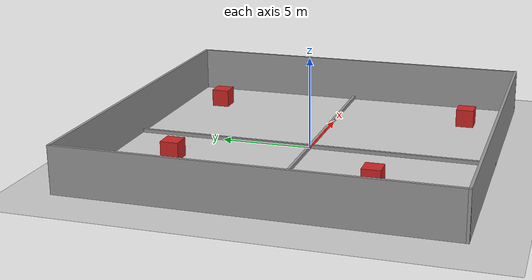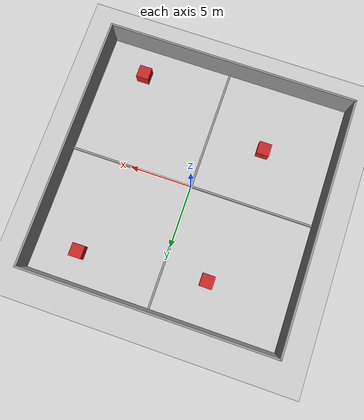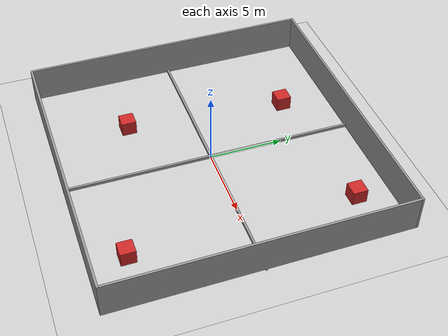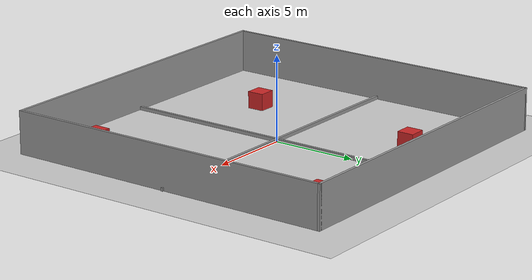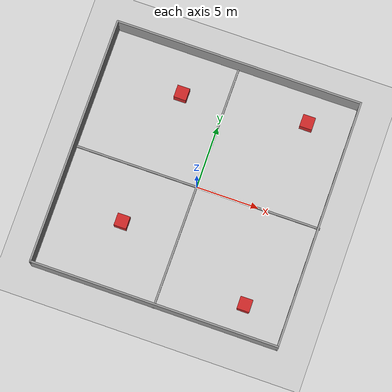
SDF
<sdf version="1.7">
 <world name="default">
  <light name="sun" type="directional">
   <pose>0 0 10 0 -0 0</pose>
   <diffuse>0.8 0.8 0.8 1</diffuse>
   <specular>0.2 0.2 0.2 1</specular>
   <attenuation>
    <range>1000</range>
    <constant>0.9</constant>
    <linear>0.01</linear>
    <quadratic>0.001</quadratic>
   </attenuation>
   <direction>-0.5 0.1 -0.9</direction>
   <spot><inner_angle>0</inner_angle><outer_angle>0</outer_angle><falloff>0</falloff></spot>
  </light>
  <model name="ground_plane">
   <static>1</static>
   <link name="link">
    <collision name="collision">
     <geometry><plane><normal>0 0 1</normal><size>100 100</size></plane></geometry>
     <surface><friction><ode><mu>100</mu><mu2>50</mu2></ode></friction></surface>
    </collision>
    <visual name="visual">
     <cast_shadows>0</cast_shadows>
     <geometry><plane><normal>0 0 1</normal><size>100 100</size></plane></geometry>
     <material>
      <script><uri>file://media/materials/scripts/gazebo.material</uri><name>Gazebo/Grey</name></script>
     </material>
    </visual>
   </link>
  </model>
  <gravity>0 0 -9.8</gravity>
  <magnetic_field>6e-06 2.3e-05 -4.2e-05</magnetic_field>
  <atmosphere type="adiabatic"/>
  <physics type="ode">
   <max_step_size>0.001</max_step_size>
   <real_time_factor>1</real_time_factor>
   <real_time_update_rate>1000</real_time_update_rate>
  </physics>
  <scene><ambient>0.4 0.4 0.4 1</ambient><background>0.7 0.7 0.7 1</background><shadows>1</shadows></scene>
  <spherical_coordinates>
   <surface_model>EARTH_WGS84</surface_model>
   <latitude_deg>0</latitude_deg>
   <longitude_deg>0</longitude_deg>
   <elevation>0</elevation>
   <heading_deg>0</heading_deg>
  </spherical_coordinates>
  <model name="boundary_20by20">
   <pose>-0.00697 0.010437 0 0 -0 0</pose>
   <link name="Wall_11">
    <collision name="Wall_11_Collision">
     <geometry><box><size>20 0.15 2.5</size></box></geometry>
     <pose>0 0 1.25 0 -0 0</pose>
    </collision>
    <visual name="Wall_11_Visual">
     <pose>0 0 1.25 0 -0 0</pose>
     <geometry><box><size>20 0.15 2.5</size></box></geometry>
     <material>
      <script><uri>file://media/materials/scripts/gazebo.material</uri><name>Gazebo/Grey</name></script>
      <ambient>0 0 0 1</ambient>
     </material>
     <meta><layer>0</layer></meta>
    </visual>
    <pose>-9.925 0 0 0 -0 1.5708</pose>
   </link>
   <link name="Wall_13">
    <collision name="Wall_13_Collision">
     <geometry><box><size>20 0.15 2.5</size></box></geometry>
     <pose>0 0 1.25 0 -0 0</pose>
    </collision>
    <visual name="Wall_13_Visual">
     <pose>0 0 1.25 0 -0 0</pose>
     <geometry><box><size>20 0.15 2.5</size></box></geometry>
     <material>
      <script><uri>file://media/materials/scripts/gazebo.material</uri><name>Gazebo/Grey</name></script>
      <ambient>0 0 0 1</ambient>
     </material>
     <meta><layer>0</layer></meta>
    </visual>
    <pose>-0 9.925 0 0 -0 0</pose>
   </link>
   <link name="Wall_5">
    <collision name="Wall_5_Collision">
     <geometry><box><size>20 0.15 2.5</size></box></geometry>
     <pose>0 0 1.25 0 -0 0</pose>
    </collision>
    <visual name="Wall_5_Visual">
     <pose>0 0 1.25 0 -0 0</pose>
     <geometry><box><size>20 0.15 2.5</size></box></geometry>
     <material>
      <script><uri>file://media/materials/scripts/gazebo.material</uri><name>Gazebo/Grey</name></script>
      <ambient>0 0 0 1</ambient>
     </material>
     <meta><layer>0</layer></meta>
    </visual>
    <pose>-0 -9.925 0 0 -0 0</pose>
   </link>
   <link name="Wall_9">
    <collision name="Wall_9_Collision">
     <geometry><box><size>20 0.15 2.5</size></box></geometry>
     <pose>0 0 1.25 0 -0 0</pose>
    </collision>
    <visual name="Wall_9_Visual">
     <pose>0 0 1.25 0 -0 0</pose>
     <geometry><box><size>20 0.15 2.5</size></box></geometry>
     <material>
      <script><uri>file://media/materials/scripts/gazebo.material</uri><name>Gazebo/Grey</name></script>
      <ambient>1 1 1 1</ambient>
     </material>
     <meta><layer>0</layer></meta>
    </visual>
    <pose>9.925 0 0 0 -0 1.5708</pose>
   </link>
   <static>1</static>
  </model>
  <model name="line">
   <pose>0.071694 1.47992 0 0 -0 0</pose>
   <link name="Wall_17">
    <collision name="Wall_17_Collision">
     <geometry><box><size>20 0.15 0.2</size></box></geometry>
     <pose>0 0 0.1 0 -0 0</pose>
    </collision>
    <visual name="Wall_17_Visual">
     <pose>0 0 0.1 0 -0 0</pose>
     <geometry><box><size>20 0.15 0.2</size></box></geometry>
     <material>
      <script><uri>file://media/materials/scripts/gazebo.material</uri><name>Gazebo/Grey</name></script>
      <ambient>1 1 1 1</ambient>
     </material>
     <meta><layer>0</layer></meta>
    </visual>
    <pose>0 -1.4895 0 0 -0 0</pose>
   </link>
   <static>1</static>
  </model>
  <model name="line_clone">
   <pose>-1.50212 0.008337 0 0 -0 1.56563</pose>
   <link name="Wall_17">
    <collision name="Wall_17_Collision">
     <geometry><box><size>20 0.15 0.2</size></box></geometry>
     <pose>0 0 0.1 0 -0 0</pose>
    </collision>
    <visual name="Wall_17_Visual">
     <pose>0 0 0.1 0 -0 0</pose>
     <geometry><box><size>20 0.15 0.2</size></box></geometry>
     <material>
      <script><uri>file://media/materials/scripts/gazebo.material</uri><name>Gazebo/Grey</name></script>
      <ambient>1 1 1 1</ambient>
     </material>
     <meta><layer>0</layer></meta>
    </visual>
    <pose>0 -1.4895 0 0 -0 0</pose>
   </link>
   <static>1</static>
  </model>
  <model name="redblock_1by1">
   <link name="link_1">
    <inertial>
     <mass>1</mass>
     <inertia>
      <ixx>0.166667</ixx>
      <ixy>0</ixy>
      <ixz>0</ixz>
      <iyy>0.166667</iyy>
      <iyz>0</iyz>
      <izz>0.166667</izz>
     </inertia>
    </inertial>
    <visual name="visual">
     <geometry><box><size>1 1 1</size></box></geometry>
     <material>
      <lighting>1</lighting>
      <script><uri>file://media/materials/scripts/gazebo.material</uri><name>Gazebo/Red</name></script>
      <shader type="pixel"><normal_map>__default__</normal_map></shader>
      <ambient>1 0 0 1</ambient>
      <diffuse>1 0 0 1</diffuse>
      <specular>1 0 0 1</specular>
      <emissive>1 0 0 1</emissive>
     </material>
    </visual>
    <collision name="collision">
     <geometry><box><size>1 1 1</size></box></geometry>
     <surface>
      <friction>
       <ode><mu>1</mu><mu2>1</mu2><fdir1>0 0 0</fdir1><slip1>0</slip1><slip2>0</slip2></ode>
       <torsional>
        <coefficient>1</coefficient>
        <patch_radius>0</patch_radius>
        <surface_radius>0</surface_radius>
        <use_patch_radius>1</use_patch_radius>
        <ode><slip>0</slip></ode>
       </torsional>
      </friction>
      <bounce><restitution_coefficient>0</restitution_coefficient><threshold>1e+06</threshold></bounce>
      <contact>
       <collide_without_contact>0</collide_without_contact>
       <collide_without_contact_bitmask>1</collide_without_contact_bitmask>
       <collide_bitmask>1</collide_bitmask>
       <ode>
        <soft_cfm>0</soft_cfm>
        <soft_erp>0.2</soft_erp>
        <kp>1e+13</kp>
        <kd>1</kd>
        <max_vel>0.01</max_vel>
        <min_depth>0</min_depth>
       </ode>
       <bullet>
        <split_impulse>1</split_impulse>
        <split_impulse_penetration_threshold>-0.01</split_impulse_penetration_threshold>
        <soft_cfm>0</soft_cfm>
        <soft_erp>0.2</soft_erp>
        <kp>1e+13</kp>
        <kd>1</kd>
       </bullet>
      </contact>
     </surface>
    </collision>
   </link>
   <static>0</static>
   <pose>-3.48861 6.50828 0.499995 -1e-05 -0 -0</pose>
  </model>
  <model name="redblock_1by1_clone">
   <link name="link_1">
    <inertial>
     <mass>1</mass>
     <inertia>
      <ixx>0.166667</ixx>
      <ixy>0</ixy>
      <ixz>0</ixz>
      <iyy>0.166667</iyy>
      <iyz>0</iyz>
      <izz>0.166667</izz>
     </inertia>
    </inertial>
    <visual name="visual">
     <geometry><box><size>1 1 1</size></box></geometry>
     <material>
      <lighting>1</lighting>
      <script><uri>file://media/materials/scripts/gazebo.material</uri><name>Gazebo/Red</name></script>
      <shader type="pixel"><normal_map>__default__</normal_map></shader>
      <ambient>1 0 0 1</ambient>
      <diffuse>1 0 0 1</diffuse>
      <specular>1 0 0 1</specular>
      <emissive>1 0 0 1</emissive>
     </material>
    </visual>
    <collision name="collision">
     <geometry><box><size>1 1 1</size></box></geometry>
     <surface>
      <friction>
       <ode><mu>1</mu><mu2>1</mu2><fdir1>0 0 0</fdir1><slip1>0</slip1><slip2>0</slip2></ode>
       <torsional>
        <coefficient>1</coefficient>
        <patch_radius>0</patch_radius>
        <surface_radius>0</surface_radius>
        <use_patch_radius>1</use_patch_radius>
        <ode><slip>0</slip></ode>
       </torsional>
      </friction>
      <bounce><restitution_coefficient>0</restitution_coefficient><threshold>1e+06</threshold></bounce>
      <contact>
       <collide_without_contact>0</collide_without_contact>
       <collide_without_contact_bitmask>1</collide_without_contact_bitmask>
       <collide_bitmask>1</collide_bitmask>
       <ode>
        <soft_cfm>0</soft_cfm>
        <soft_erp>0.2</soft_erp>
        <kp>1e+13</kp>
        <kd>1</kd>
        <max_vel>0.01</max_vel>
        <min_depth>0</min_depth>
       </ode>
       <bullet>
        <split_impulse>1</split_impulse>
        <split_impulse_penetration_threshold>-0.01</split_impulse_penetration_threshold>
        <soft_cfm>0</soft_cfm>
        <soft_erp>0.2</soft_erp>
        <kp>1e+13</kp>
        <kd>1</kd>
       </bullet>
      </contact>
     </surface>
    </collision>
   </link>
   <static>0</static>
   <pose>-4.51136 -4.52133 0.499995 -1e-05 -0 -0</pose>
  </model>
  <model name="redblock_1by1_clone_0">
   <link name="link_1">
    <inertial>
     <mass>1</mass>
     <inertia>
      <ixx>0.166667</ixx>
      <ixy>0</ixy>
      <ixz>0</ixz>
      <iyy>0.166667</iyy>
      <iyz>0</iyz>
      <izz>0.166667</izz>
     </inertia>
    </inertial>
    <visual name="visual">
     <geometry><box><size>1 1 1</size></box></geometry>
     <material>
      <lighting>1</lighting>
      <script><uri>file://media/materials/scripts/gazebo.material</uri><name>Gazebo/Red</name></script>
      <shader type="pixel"><normal_map>__default__</normal_map></shader>
      <ambient>1 0 0 1</ambient>
      <diffuse>1 0 0 1</diffuse>
      <specular>1 0 0 1</specular>
      <emissive>1 0 0 1</emissive>
     </material>
    </visual>
    <collision name="collision">
     <geometry><box><size>1 1 1</size></box></geometry>
     <surface>
      <friction>
       <ode><mu>1</mu><mu2>1</mu2><fdir1>0 0 0</fdir1><slip1>0</slip1><slip2>0</slip2></ode>
       <torsional>
        <coefficient>1</coefficient>
        <patch_radius>0</patch_radius>
        <surface_radius>0</surface_radius>
        <use_patch_radius>1</use_patch_radius>
        <ode><slip>0</slip></ode>
       </torsional>
      </friction>
      <bounce><restitution_coefficient>0</restitution_coefficient><threshold>1e+06</threshold></bounce>
      <contact>
       <collide_without_contact>0</collide_without_contact>
       <collide_without_contact_bitmask>1</collide_without_contact_bitmask>
       <collide_bitmask>1</collide_bitmask>
       <ode>
        <soft_cfm>0</soft_cfm>
        <soft_erp>0.2</soft_erp>
        <kp>1e+13</kp>
        <kd>1</kd>
        <max_vel>0.01</max_vel>
        <min_depth>0</min_depth>
       </ode>
       <bullet>
        <split_impulse>1</split_impulse>
        <split_impulse_penetration_threshold>-0.01</split_impulse_penetration_threshold>
        <soft_cfm>0</soft_cfm>
        <soft_erp>0.2</soft_erp>
        <kp>1e+13</kp>
        <kd>1</kd>
       </bullet>
      </contact>
     </surface>
    </collision>
   </link>
   <static>0</static>
   <pose>6.49646 7.51516 0.499995 -1e-05 -0 -0</pose>
  </model>
  <model name="redblock_1by1_clone_1">
   <link name="link_1">
    <inertial>
     <mass>1</mass>
     <inertia>
      <ixx>0.166667</ixx>
      <ixy>0</ixy>
      <ixz>0</ixz>
      <iyy>0.166667</iyy>
      <iyz>0</iyz>
      <izz>0.166667</izz>
     </inertia>
    </inertial>
    <visual name="visual">
     <geometry><box><size>1 1 1</size></box></geometry>
     <material>
      <lighting>1</lighting>
      <script><uri>file://media/materials/scripts/gazebo.material</uri><name>Gazebo/Red</name></script>
      <shader type="pixel"><normal_map>__default__</normal_map></shader>
      <ambient>1 0 0 1</ambient>
      <diffuse>1 0 0 1</diffuse>
      <specular>1 0 0 1</specular>
      <emissive>1 0 0 1</emissive>
     </material>
    </visual>
    <collision name="collision">
     <geometry><box><size>1 1 1</size></box></geometry>
     <surface>
      <friction>
       <ode><mu>1</mu><mu2>1</mu2><fdir1>0 0 0</fdir1><slip1>0</slip1><slip2>0</slip2></ode>
       <torsional>
        <coefficient>1</coefficient>
        <patch_radius>0</patch_radius>
        <surface_radius>0</surface_radius>
        <use_patch_radius>1</use_patch_radius>
        <ode><slip>0</slip></ode>
       </torsional>
      </friction>
      <bounce><restitution_coefficient>0</restitution_coefficient><threshold>1e+06</threshold></bounce>
      <contact>
       <collide_without_contact>0</collide_without_contact>
       <collide_without_contact_bitmask>1</collide_without_contact_bitmask>
       <collide_bitmask>1</collide_bitmask>
       <ode>
        <soft_cfm>0</soft_cfm>
        <soft_erp>0.2</soft_erp>
        <kp>1e+13</kp>
        <kd>1</kd>
        <max_vel>0.01</max_vel>
        <min_depth>0</min_depth>
       </ode>
       <bullet>
        <split_impulse>1</split_impulse>
        <split_impulse_penetration_threshold>-0.01</split_impulse_penetration_threshold>
        <soft_cfm>0</soft_cfm>
        <soft_erp>0.2</soft_erp>
        <kp>1e+13</kp>
        <kd>1</kd>
       </bullet>
      </contact>
     </surface>
    </collision>
   </link>
   <static>0</static>
   <pose>6.50604 -7.51006 0.499995 -1e-05 -0 -0</pose>
  </model>
 </world>
</sdf>
